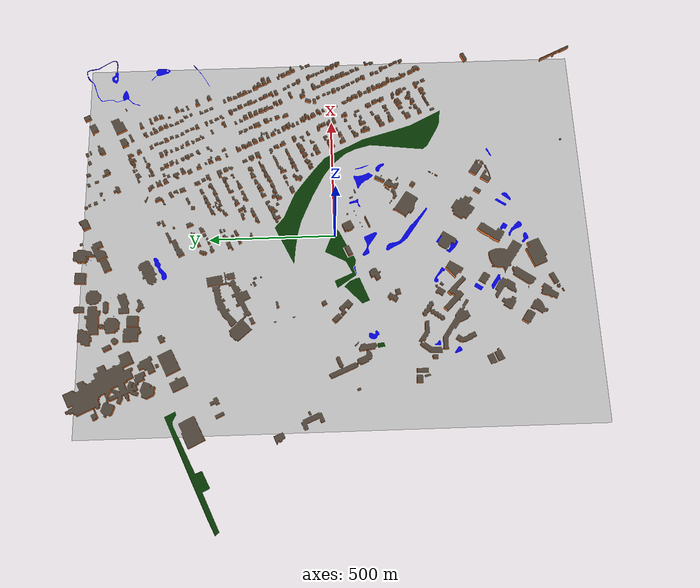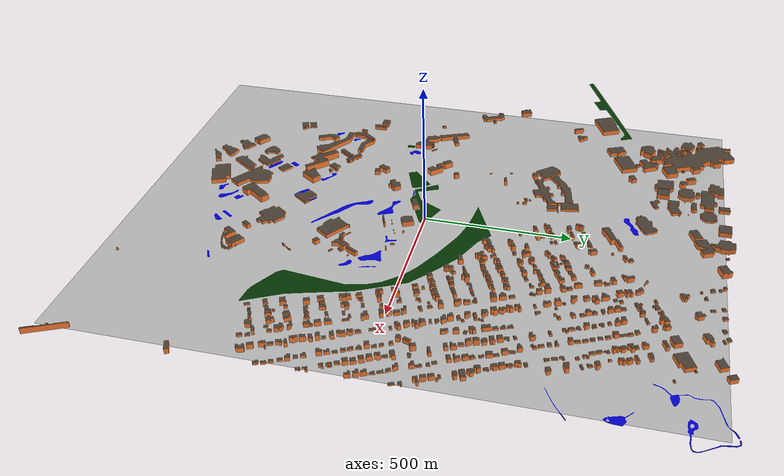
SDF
<sdf version="1.7">
 <world name="default">
  <plugin name="gazebo_ros_state" filename="libgazebo_ros_state.so">
   <ros><namespace>/gazebo</namespace><argument>use_sim_time:=true</argument></ros>
  </plugin>
  <plugin name="real_time_factor_publisher" filename="libreal_time_factor_plugin.so"/>
  <light name="sun" type="directional">
   <pose>0 0 10 0 -0 0</pose>
   <diffuse>0.8 0.8 0.8 1</diffuse>
   <specular>0.2 0.2 0.2 1</specular>
   <attenuation>
    <range>1000</range>
    <constant>0.9</constant>
    <linear>0.01</linear>
    <quadratic>0.001</quadratic>
   </attenuation>
   <direction>-0.5 0.1 -0.9</direction>
   <spot><inner_angle>0</inner_angle><outer_angle>0</outer_angle><falloff>0</falloff></spot>
  </light>
  <gravity>0 0 0</gravity>
  <magnetic_field>6e-06 2.3e-05 -4.2e-05</magnetic_field>
  <atmosphere type="adiabatic"/>
  <physics type="ode">
   <max_step_size>0.001</max_step_size>
   <real_time_factor>1</real_time_factor>
   <real_time_update_rate>1000</real_time_update_rate>
  </physics>
  <scene>
   <ambient>0.4 0.4 0.4 1</ambient>
   <background>0.7 0.7 0.7 1</background>
   <shadows>1</shadows>
   <fog><color>0.7 0.7 0.7 1</color><type>exp</type><start>0</start><end>1000</end><density>0.0</density></fog>
  </scene>
  <audio><device>default</device></audio>
  <spherical_coordinates>
   <surface_model>EARTH_WGS84</surface_model>
   <latitude_deg>0</latitude_deg>
   <longitude_deg>0</longitude_deg>
   <elevation>0</elevation>
   <heading_deg>0</heading_deg>
  </spherical_coordinates>
  <model name="ERAU">
   <pose>1.18557 -1.16756 0 0 -0 0</pose>
   <static>1</static>
   <link name="city">
    <visual name="visual">
     <geometry><mesh><uri>model://ERAU/ERAU.dae</uri></mesh></geometry>
     <receive_shadows>true</receive_shadows>
     <material><lighting>true</lighting></material>
    </visual>
    <collision name="collision"><geometry><mesh><uri>model://ERAU/ERAU.dae</uri></mesh></geometry></collision>
   </link>
  </model>
 </world>
</sdf>
